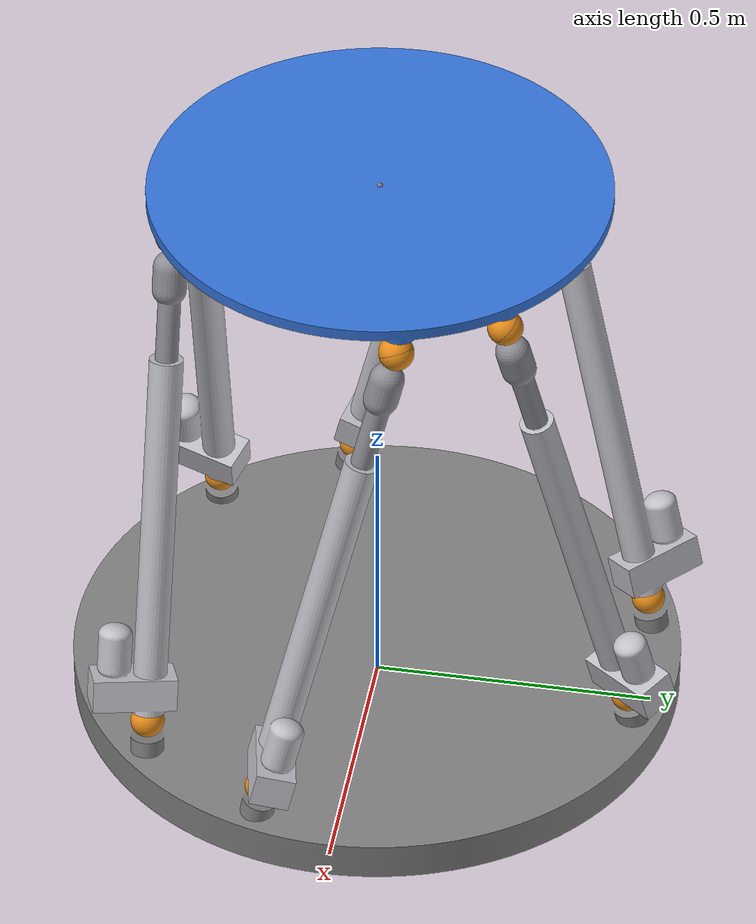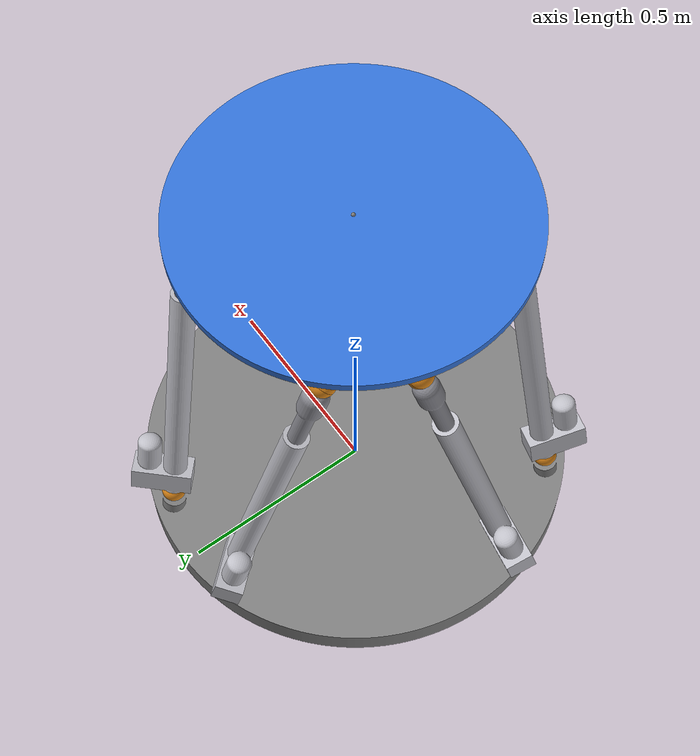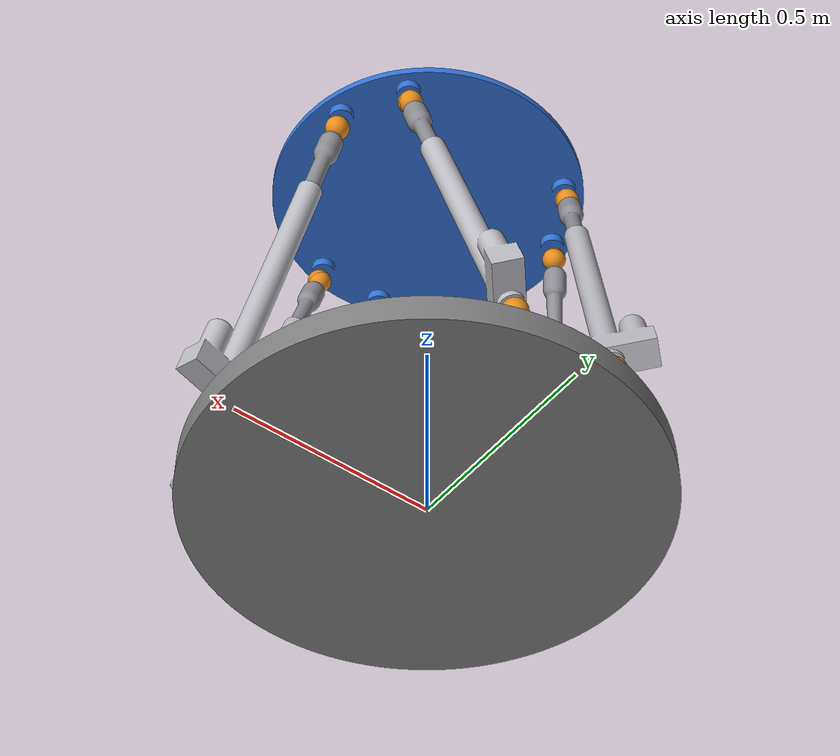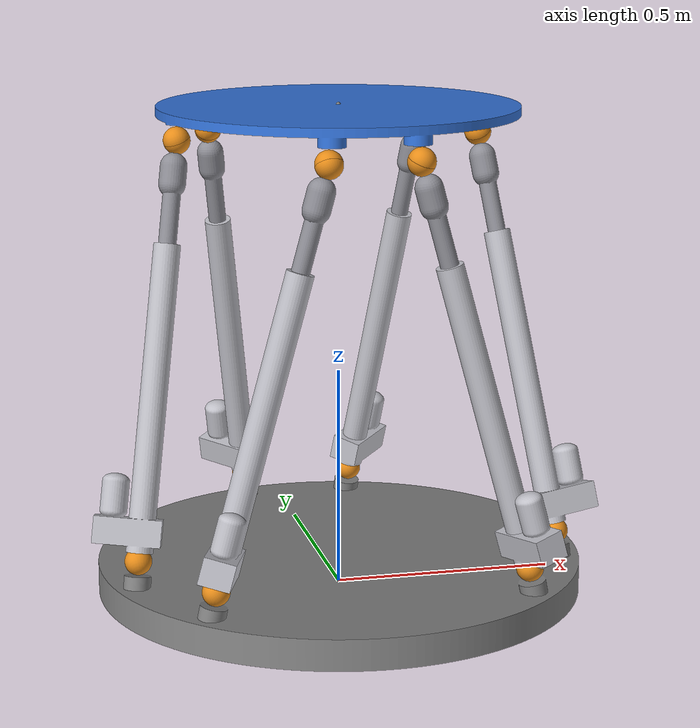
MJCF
<mujoco model="stewart_platform">
  <compiler angle="radian" meshdir="assets" autolimits="true" inertiafromgeom="true"/>

  <option integrator="implicitfast"/>

  <default>
    <default class="stewart">
      <geom type="mesh" contype="0" conaffinity="0"/>

      <default class="hinge">
        <joint type="hinge"/>
      </default>
      <default class="slide">
        <joint type="slide" axis="0 0 1" springdamper="0.1 7" range="-0.1 0.35"/>
      </default>

      <default class="leg_actuator">
        <general gear="1 0 0 0 0 0" ctrlrange="-400 400" forcerange="-400 400"/>
      </default>
      <default class="disturbance">
        <general ctrlrange="-500 500" forcerange="-500 500"/>
      </default>

      <default class="base">
        <geom mesh="base" material="base_mat" mass="20"/>
      </default>
      <default class="upper">
        <geom mesh="upper" material="upper_mat" mass="20"/>
      </default>
      <default class="cardan1">
        <geom mesh="cardan1" material="cardan_mat" mass="0.05"/>
      </default>
      <default class="cardan2">
        <geom mesh="cardan2" material="cardan_mat" mass="0.02"/>
      </default>
      <default class="legbot">
        <geom mesh="legbot" material="leg_lower_mat" mass="10"/>
      </default>
      <default class="legup">
        <geom mesh="legup" material="leg_upper_mat" mass="5"/>
      </default>
    </default>
  </default>

  <asset>
    <material name="base_mat" rgba="0.5 0.5 0.5 1"/>
    <material name="upper_mat" rgba="0.2 0.45 0.85 1"/>
    <material name="cardan_mat" rgba="0.9 0.55 0.1 1"/>
    <material name="leg_lower_mat" rgba="0.75 0.75 0.78 1"/>
    <material name="leg_upper_mat" rgba="0.55 0.55 0.58 1"/>

    <mesh name="base" file="base.stl"/>
    <mesh name="cardan1" file="cardan1.stl"/>
    <mesh name="cardan2" file="cardan2.stl"/>
    <mesh name="legbot" file="legbot.stl"/>
    <mesh name="legup" file="legup.stl"/>
    <mesh name="upper" file="upper.stl"/>
  </asset>

  <worldbody>
    <!-- Base body -->
    <body name="base" childclass="stewart">
      <geom class="base"/>
      <site name="base_center" type="sphere"/>
    </body>

    <!-- Leg 1 -->
    <body name="cardan1_1" childclass="stewart" pos="0.48295431 -0.12941450 0.08690238"
      quat="-0.99025308 0.09347874 0.04275547 -0.09398155">
      <geom class="cardan1"/>
      <body name="cardan2_1" pos="-0.0003651 0.0117000 0.0506940" quat="0.0115254 0.7070127 0.7070130 0.0115254">
        <joint name="joint_c2_1" class="hinge" axis="1 0 0" pos="0.0208000 0.0000000 0.0112000"/>
        <geom class="cardan2"/>
        <body name="legbot_1" pos="-0.0087894 0.0005000 -0.0282264" quat="0.0215864 0.7067774 0.7067770 0.0215864">
          <joint name="joint_lb_1" class="hinge" axis="1 0 0" pos="0.0325000 -0.0000000 -0.0395000"/>
          <geom class="legbot"/>
          <body name="legup_1" pos="0.0000000 0.0000000 0.2237482" quat="0.8504553 -0.0000000 0.0000000 -0.5260473">
            <joint name="joint_lu_1" class="slide"/>
            <geom class="legup"/>
            <body name="cardan1_7" pos="0.0000000 0.0000000 0.6260000"
              quat="-0.8354843 -0.0000000 0.0000000 -0.5495143">
              <joint name="joint_c1_7" class="hinge" axis="0 0 1"/>
              <geom class="cardan1"/>
              <body name="cardan2_7" pos="0.0118762 0.0005000 0.0290198"
                quat="0.9995139 0.0000000 -0.0311750 0.0000003">
                <joint name="joint_c2_7" class="hinge" axis="0 1 0" pos="-0.0112000 0.0320000 0.0112000"/>
                <geom class="cardan2"/>
                <body name="cardan1_13" pos="-0.0107000 -0.0045955 0.0504318"
                  quat="0.0412026 -0.7059055 0.7059052 0.0412025">
                  <joint name="joint_c1_13" class="hinge" axis="0 1 0" pos="-0.0000000 0.0280000 0.0395000"/>
                  <geom class="cardan1"/>
                  <site name="site_c1_13" type="sphere"/>
                </body>
              </body>
            </body>
          </body>
        </body>
      </body>
    </body>

    <!-- Leg 2 -->
    <body name="cardan1_2" childclass="stewart" pos="0.12940089 0.48295792 0.08690238"
      quat="0.41447690 -0.00962823 0.10234062 -0.90423592">
      <geom class="cardan1"/>
      <body name="cardan2_2" pos="-0.0115170 0.0005000 0.0286262" quat="-0.0000003 0.0143599 0.0000000 0.9998969">
        <joint name="joint_c2_2" class="hinge" axis="0 1 0" pos="-0.0112000 -0.0320000 0.0112000"/>
        <geom class="cardan2"/>
        <body name="legbot_2" pos="-0.0117000 -0.0021153 0.0506433" quat="0.9996412 0.0267851 -0.0000000 0.0000003">
          <joint name="joint_lb_2" class="hinge" axis="1 0 0" pos="0.0325000 -0.0000000 -0.0395000"/>
          <geom class="legbot"/>
          <body name="legup_2" pos="0.0000000 0.0000000 0.2214335" quat="0.9733343 -0.0000000 0.0000000 0.2293911">
            <joint name="joint_lu_2" class="slide"/>
            <geom class="legup"/>
            <body name="cardan1_8" pos="0.0000000 -0.0000000 0.6260000"
              quat="0.9663277 0.0000000 -0.0000000 -0.2573144">
              <joint name="joint_c1_8" class="hinge" axis="0 0 1"/>
              <geom class="cardan1"/>
              <body name="cardan2_8" pos="0.0119132 0.0005000 0.0290619"
                quat="0.9994572 0.0000000 -0.0329439 0.0000003">
                <joint name="joint_c2_8" class="hinge" axis="0 1 0" pos="-0.0112000 0.0320000 0.0112000"/>
                <geom class="cardan2"/>
                <body name="cardan1_14" pos="-0.0107000 0.0042945 0.0504659"
                  quat="0.0384964 0.7060583 -0.7060579 0.0384964">
                  <joint name="joint_c1_14" class="hinge" axis="0 1 0" pos="-0.0000000 0.0280000 0.0395000"/>
                  <geom class="cardan1"/>
                  <site name="site_c1_14" type="sphere"/>
                </body>
              </body>
            </body>
          </body>
        </body>
      </body>
    </body>

    <!-- Leg 3 -->
    <body name="cardan1_3" childclass="stewart" pos="-0.12941813 0.48295792 0.08690238"
      quat="0.90828520 0.10224054 -0.01063847 -0.40552645">
      <geom class="cardan1"/>
      <body name="cardan2_3" pos="-0.0003132 -0.0107000 0.0283044" quat="-0.7070379 0.0098859 -0.0098859 0.7070375">
        <joint name="joint_c2_3" class="hinge" axis="1 0 0" pos="-0.0432000 0.0000000 0.0112000"/>
        <geom class="cardan2"/>
        <body name="legbot_3" pos="-0.0090335 0.0005000 0.0506405" quat="0.7068408 -0.0193995 0.0193995 -0.7068404">
          <joint name="joint_lb_3" class="hinge" axis="1 0 0" pos="0.0325000 -0.0000000 -0.0395000"/>
          <geom class="legbot"/>
          <body name="legup_3" pos="0.0000000 0.0000000 0.2215220" quat="0.9733343 -0.0000000 0.0000000 0.2293911">
            <joint name="joint_lu_3" class="slide"/>
            <geom class="legup"/>
            <body name="cardan1_9" pos="-0.0000000 -0.0000000 0.6260000"
              quat="0.5450449 0.0000000 0.0000000 -0.8384069">
              <joint name="joint_c1_9" class="hinge" axis="0 0 1"/>
              <geom class="cardan1"/>
              <body name="cardan2_9" pos="0.0099095 0.0005000 0.0271436"
                quat="0.9985028 -0.0000000 0.0547013 0.0000003">
                <joint name="joint_c2_9" class="hinge" axis="0 1 0" pos="-0.0112000 0.0320000 0.0112000"/>
                <geom class="cardan2"/>
                <body name="cardan1_15" pos="-0.0107000 -0.0026058 0.0506140"
                  quat="0.0233366 -0.7067218 0.7067214 0.0233366">
                  <joint name="joint_c1_15" class="hinge" axis="0 1 0" pos="-0.0000000 0.0280000 0.0395000"/>
                  <geom class="cardan1"/>
                  <site name="site_c1_15" type="sphere"/>
                </body>
              </body>
            </body>
          </body>
        </body>
      </body>
    </body>

    <!-- Leg 4 -->
    <body name="cardan1_4" childclass="stewart" pos="-0.48297152 -0.12941450 0.08690238"
      quat="0.99006116 -0.09356494 0.04256650 -0.09598227">
      <geom class="cardan1"/>
      <body name="cardan2_4" pos="-0.0115380 0.0005000 0.0286485" quat="-0.0000003 0.0153233 0.0000000 0.9998826">
        <joint name="joint_c2_4" class="hinge" axis="0 1 0" pos="-0.0112000 -0.0320000 0.0112000"/>
        <geom class="cardan2"/>
        <body name="legbot_4" pos="-0.0117000 -0.0024210 0.0506257" quat="0.9995299 0.0306600 -0.0000000 0.0000003">
          <joint name="joint_lb_4" class="hinge" axis="1 0 0" pos="0.0325000 -0.0000000 -0.0395000"/>
          <geom class="legbot"/>
          <body name="legup_4" pos="0.0000000 0.0000000 0.2238731" quat="0.9733343 -0.0000000 0.0000000 0.2293911">
            <joint name="joint_lu_4" class="slide"/>
            <geom class="legup"/>
            <body name="cardan1_10" pos="-0.0000000 0.0000000 0.6260000"
              quat="-0.2543864 0.0000000 0.0000000 -0.9671027">
              <joint name="joint_c1_10" class="hinge" axis="0 0 1"/>
              <geom class="cardan1"/>
              <body name="cardan2_10" pos="-0.0007171 -0.0107000 0.0283230"
                quat="-0.7067442 0.0226472 -0.0226471 0.7067438">
                <joint name="joint_c2_10" class="hinge" axis="1 0 0" pos="-0.0432000 0.0000000 0.0112000"/>
                <geom class="cardan2"/>
                <body name="cardan1_16" pos="-0.0066027 0.0005000 0.0504316"
                  quat="-0.0000000 0.9982996 0.0000003 -0.0582920">
                  <joint name="joint_c1_16" class="hinge" axis="0 1 0" pos="-0.0000000 -0.0270000 0.0395000"/>
                  <geom class="cardan1"/>
                  <site name="site_c1_16" type="sphere"/>
                </body>
              </body>
            </body>
          </body>
        </body>
      </body>
    </body>

    <!-- Leg 5 -->
    <body name="cardan1_5" childclass="stewart" pos="-0.35356201 -0.35355835 0.08690238"
      quat="0.80591009 0.06025194 0.08328271 0.58304598">
      <geom class="cardan1"/>
      <body name="cardan2_5" pos="-0.0004173 -0.0107000 0.0283078" quat="-0.7069842 0.0131745 -0.0131745 0.7069839">
        <joint name="joint_c2_5" class="hinge" axis="1 0 0" pos="-0.0432000 0.0000000 0.0112000"/>
        <geom class="cardan2"/>
        <body name="legbot_5" pos="-0.0089925 0.0005000 0.0506383" quat="0.7068306 -0.0197669 0.0197669 -0.7068303">
          <joint name="joint_lb_5" class="hinge" axis="1 0 0" pos="0.0325000 -0.0000000 -0.0395000"/>
          <geom class="legbot"/>
          <body name="legup_5" pos="0.0000000 0.0000000 0.2228070" quat="0.9733343 -0.0000000 0.0000000 0.2293911">
            <joint name="joint_lu_5" class="slide"/>
            <geom class="legup"/>
            <body name="cardan1_11" pos="0.0000000 -0.0000000 0.6260000"
              quat="-0.9777430 -0.0000000 0.0000000 0.2098060">
              <joint name="joint_c1_11" class="hinge" axis="0 0 1"/>
              <geom class="cardan1"/>
              <body name="cardan2_11" pos="0.0118145 0.0005000 0.0289502"
                quat="0.9996011 0.0000000 -0.0282423 0.0000003">
                <joint name="joint_c2_11" class="hinge" axis="0 1 0" pos="-0.0112000 0.0320000 0.0112000"/>
                <geom class="cardan2"/>
                <body name="cardan1_17" pos="-0.0107000 -0.0043817 0.0504562"
                  quat="0.0392797 -0.7060151 0.7060148 0.0392797">
                  <joint name="joint_c1_17" class="hinge" axis="0 1 0" pos="-0.0000000 0.0280000 0.0395000"/>
                  <geom class="cardan1"/>
                  <site name="site_c1_17" type="sphere"/>
                </body>
              </body>
            </body>
          </body>
        </body>
      </body>
    </body>

    <!-- Leg 6 -->
    <body name="cardan1_6" childclass="stewart" pos="0.35354476 -0.35355835 0.08690238"
      quat="0.57400711 -0.08395056 -0.05931786 0.81237278">
      <geom class="cardan1"/>
      <body name="cardan2_6" pos="-0.0004173 -0.0107000 0.0283078" quat="-0.7069842 0.0131748 -0.0131748 0.7069839">
        <joint name="joint_c2_6" class="hinge" axis="1 0 0" pos="-0.0432000 0.0000000 0.0112000"/>
        <geom class="cardan2"/>
        <body name="legbot_6" pos="-0.0133176 0.0005000 0.0506432" quat="0.7068527 0.0189608 -0.0189608 -0.7068523">
          <joint name="joint_lb_6" class="hinge" axis="1 0 0" pos="0.0325000 -0.0000000 -0.0395000"/>
          <geom class="legbot"/>
          <body name="legup_6" pos="0.0000000 0.0000000 0.2226102" quat="0.9733343 -0.0000000 0.0000000 0.2293911">
            <joint name="joint_lu_6" class="slide"/>
            <geom class="legup"/>
            <body name="cardan1_12" pos="0.0000000 0.0000000 0.6260000"
              quat="-0.8680631 -0.0000000 0.0000000 -0.4964539">
              <joint name="joint_c1_12" class="hinge" axis="0 0 1"/>
              <geom class="cardan1"/>
              <body name="cardan2_12" pos="-0.0099094 0.0005000 0.0518565"
                quat="0.0547040 0.0000003 -0.9985026 0.0000000">
                <joint name="joint_c2_12" class="hinge" axis="0 1 0" pos="-0.0112000 0.0320000 0.0112000"/>
                <geom class="cardan2"/>
                <body name="cardan1_18" pos="-0.0107000 0.0022891 -0.0282336"
                  quat="0.7068098 0.0204980 -0.0204980 0.7068094">
                  <joint name="joint_c1_18" class="hinge" axis="0 1 0" pos="-0.0000000 0.0280000 0.0395000"/>
                  <geom class="cardan1"/>
                  <site name="site_c1_18" type="sphere"/>
                </body>
              </body>
            </body>
          </body>
        </body>
      </body>
    </body>

    <!-- Upper (moving) platform -->
    <body name="upper" childclass="stewart" pos="0.0002058 0.0051264 1.1000000">
      <freejoint name="upper_joint"/>
      <geom class="upper"/>
      <site name="upper_center" type="sphere"/>
      <site name="site_upper_1" type="sphere" pos="0.3380740 0.0905866 -0.0419024"
        quat="0.0134171 -0.7891510 0.6055365 -0.1019131"/>
      <site name="site_upper_2" type="sphere" pos="0.2474874 0.2474874 -0.0419024"
        quat="0.0949679 -0.9189857 0.3806561 0.0393370"/>
      <site name="site_upper_3" type="sphere" pos="-0.2474874 0.2474874 -0.0419024"
        quat="0.0949679 -0.9189857 0.3806561 0.0393370"/>
      <site name="site_upper_4" type="sphere" pos="-0.3380740 0.0905866 -0.0419024"
        quat="-0.1019131 -0.6055369 0.7891506 0.0134171"/>
      <site name="site_upper_5" type="sphere" pos="-0.0905867 -0.3380740 -0.0419024"
        quat="-0.0815508 0.1298345 0.9861930 -0.0625761"/>
      <site name="site_upper_6" type="sphere" pos="0.0905867 -0.3380740 -0.0419024"
        quat="-0.1019131 -0.6055365 -0.7891510 -0.0134171"/>
    </body>
  </worldbody>

  <equality>
    <weld name="w_1" site1="site_c1_13" site2="site_upper_1" solref="0.0001 1" solimp="0.9999 0.9999 0.0001 0.5 2"/>
    <weld name="w_2" site1="site_c1_14" site2="site_upper_2" solref="0.0001 1" solimp="0.9999 0.9999 0.0001 0.5 2"/>
    <weld name="w_3" site1="site_c1_15" site2="site_upper_3" solref="0.0001 1" solimp="0.9999 0.9999 0.0001 0.5 2"/>
    <weld name="w_4" site1="site_c1_16" site2="site_upper_4" solref="0.0001 1" solimp="0.9999 0.9999 0.0001 0.5 2"/>
    <weld name="w_5" site1="site_c1_17" site2="site_upper_5" solref="0.0001 1" solimp="0.9999 0.9999 0.0001 0.5 2"/>
    <weld name="w_6" site1="site_c1_18" site2="site_upper_6" solref="0.0001 1" solimp="0.9999 0.9999 0.0001 0.5 2"/>
  </equality>

  <actuator>
    <general name="leg1_ctrl" joint="joint_lu_1" class="leg_actuator"/>
    <general name="leg2_ctrl" joint="joint_lu_2" class="leg_actuator"/>
    <general name="leg3_ctrl" joint="joint_lu_3" class="leg_actuator"/>
    <general name="leg4_ctrl" joint="joint_lu_4" class="leg_actuator"/>
    <general name="leg5_ctrl" joint="joint_lu_5" class="leg_actuator"/>
    <general name="leg6_ctrl" joint="joint_lu_6" class="leg_actuator"/>

    <!-- External disturbance wrench applied to the upper platform -->
    <general name="upper_f_x" class="disturbance" site="upper_center" gear="1 0 0 0 0 0"/>
    <general name="upper_f_y" class="disturbance" site="upper_center" gear="0 1 0 0 0 0"/>
    <general name="upper_f_z" class="disturbance" site="upper_center" gear="0 0 1 0 0 0"/>
    <general name="upper_t_x" class="disturbance" site="upper_center" gear="0 0 0 1 0 0"/>
    <general name="upper_t_y" class="disturbance" site="upper_center" gear="0 0 0 0 1 0"/>
    <general name="upper_t_z" class="disturbance" site="upper_center" gear="0 0 0 0 0 1"/>
  </actuator>

  <sensor>
    <framepos name="upper_position" objtype="site" objname="upper_center" reftype="site" refname="base_center"/>
    <framequat name="upper_quaternion" objtype="site" objname="upper_center" reftype="site" refname="base_center"/>
    <framelinvel name="upper_linvel" objtype="site" objname="upper_center" reftype="site" refname="base_center"/>
    <framelinacc name="upper_linacc" objtype="site" objname="upper_center"/>
    <frameangvel name="upper_angvel" objtype="site" objname="upper_center" reftype="site" refname="base_center"/>
    <frameangacc name="upper_angacc" objtype="site" objname="upper_center"/>
    <actuatorpos name="leg1_len_sensor" actuator="leg1_ctrl"/>
    <actuatorpos name="leg2_len_sensor" actuator="leg2_ctrl"/>
    <actuatorpos name="leg3_len_sensor" actuator="leg3_ctrl"/>
    <actuatorpos name="leg4_len_sensor" actuator="leg4_ctrl"/>
    <actuatorpos name="leg5_len_sensor" actuator="leg5_ctrl"/>
    <actuatorpos name="leg6_len_sensor" actuator="leg6_ctrl"/>
  </sensor>
</mujoco>
